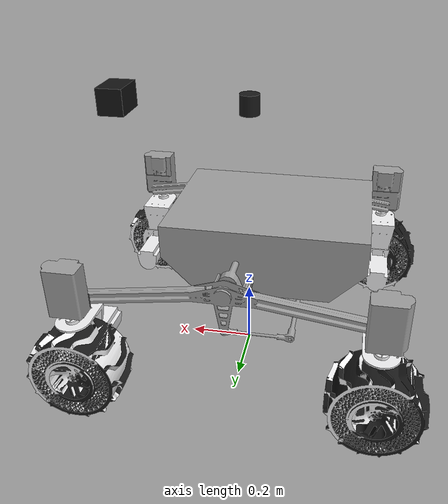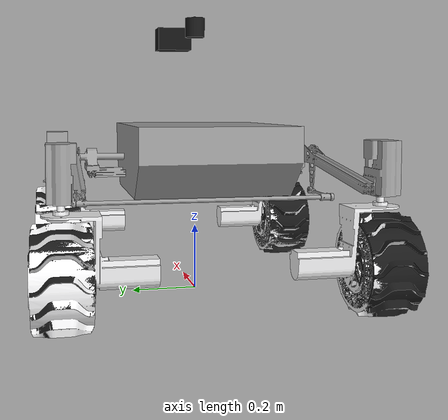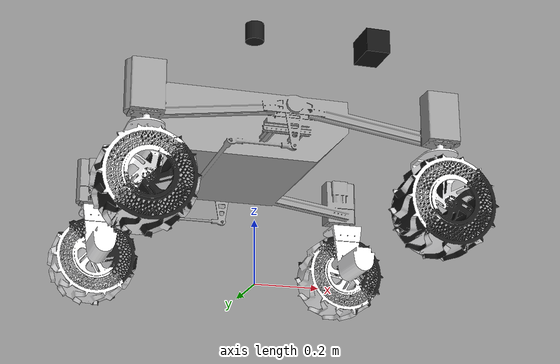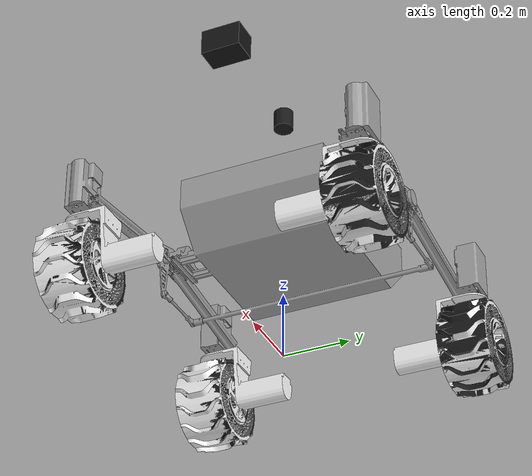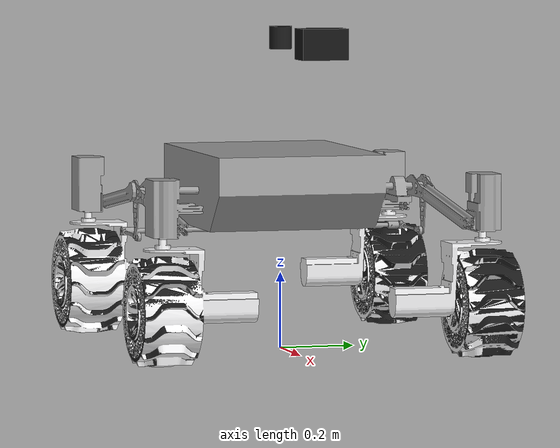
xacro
<?xml version="1.0"?>
<robot name="rover_steering_v1">
  <link name="base_footprint">
    </link>
  <joint name="base_footprint_joint" type="fixed">
    <parent link="base_footprint" />
    <child link="base_link" />
    <origin xyz="0 0 0.5235" rpy="0 0 0" />
  </joint>
  <link name="base_link">
    <inertial>
      <origin xyz="-0.038189 1.4028E-08 -0.4" rpy="0 0 0" />
      <mass value="5.3544" />
      <inertia ixx="0.08924" ixy="0.0" ixz="0.0" iyy="0.17848" iyz="0.0" izz="0.232024" />
    </inertial>
    <visual>
      <origin xyz="0 0 0" rpy="0 0 0" />
      <geometry>
        <mesh filename="package://rover_steering_v1/meshes/base_link.STL" />
      </geometry>
      <material name="base_link_material">
        <color rgba="0.62745 0.62745 0.62745 1" />
      </material>
    </visual>
    <collision>
      <origin xyz="0 0 0.1" rpy="0 0 0" />
      <geometry>
        <box size="0.6 0.4 0.2" />
      </geometry>
    </collision>
  </link>
  <link name="steer1_link">
    <inertial>
      <origin xyz="-0.00087464 -1.9867E-08 -0.185" rpy="0 0 0" />
      <mass value="4.662" />
      <inertia ixx="0.039839" ixy="5.1891E-09" ixz="-5.3223E-09" iyy="0.02869" iyz="1.7198E-10" izz="0.02869" />
    </inertial>
    <visual>
      <origin xyz="0 0 0" rpy="0 0 0" />
      <geometry>
        <mesh filename="package://rover_steering_v1/meshes/steer1_link.STL" />
      </geometry>
      <material name="steer1_link_material">
        <color rgba="0.96078 0.96078 0.96471 1" />
      </material>
    </visual>
  </link>
  <joint name="steer1_joint" type="fixed">
    <origin xyz="0.425 0.425 -0.1885" rpy="0 0 1.5708" />
    <parent link="base_link" />
    <child link="steer1_link" />
  </joint>
  <link name="wheel1_link">
    <inertial>
      <origin xyz="1.9869E-08 1.9968E-08 -0.079149" rpy="0 0 0" />
      <mass value="4.6609" />
      <inertia ixx="0.02869" ixy="-1.7072E-10" ixz="5.1892E-09" iyy="0.02869" iyz="5.3209E-09" izz="0.039839" />
    </inertial>
    <visual>
      <origin xyz="0 0 0" rpy="0 0 0" />
      <geometry>
        <mesh filename="package://rover_steering_v1/meshes/wheel1_link.STL" />
      </geometry>
      <material name="wheel1_link_material">
        <color rgba="0.098039 0.098039 0.098039 1" />
      </material>
    </visual>
    <collision>
      <origin xyz="0 0 0" rpy="0 0 0" />
      <geometry>
        <cylinder radius="0.15" length="0.1" />
      </geometry>
    </collision>
  </link>
  <joint name="wheel1_joint" type="continuous">
    <origin xyz="-0.08 0 -0.185" rpy="1.5708 0 -1.5708" />
    <parent link="steer1_link" />
    <child link="wheel1_link" />
    <axis xyz="0 0 -1" />
    <limit effort="100" velocity="50" />
    <dynamics friction="0.2" />
  </joint>
  <link name="steer2_link">
    <inertial>
      <origin xyz="-0.00087463 1.9098E-08 -0.185" rpy="0 0 0" />
      <mass value="4.662" />
      <inertia ixx="0.039839" ixy="-5.0174E-09" ixz="-5.2922E-09" iyy="0.02869" iyz="-1.4328E-10" izz="0.02869" />
    </inertial>
    <visual>
      <origin xyz="0 0 0" rpy="0 0 0" />
      <geometry>
        <mesh filename="package://rover_steering_v1/meshes/steer2_link.STL" />
      </geometry>
      <material name="steer2_link_material">
        <color rgba="0.96078 0.96078 0.96471 1" />
      </material>
    </visual>
  </link>
  <joint name="steer2_joint" type="fixed">
    <origin xyz="-0.42458 0.425 -0.1885" rpy="0 0 1.5708" />
    <parent link="base_link" />
    <child link="steer2_link" />
  </joint>
  <link name="wheel2_link">
    <inertial>
      <origin xyz="-1.8996E-08 1.9916E-08 -0.079149" rpy="0 0 0" />
      <mass value="4.6608" />
      <inertia ixx="0.02869" ixy="1.4201E-10" ixz="-5.016E-09" iyy="0.02869" iyz="5.2923E-09" izz="0.039839" />
    </inertial>
    <visual>
      <origin xyz="0 0 0" rpy="0 0 0" />
      <geometry>
        <mesh filename="package://rover_steering_v1/meshes/wheel2_link.STL" />
      </geometry>
      <material name="wheel2_link_material">
        <color rgba="0.098039 0.098039 0.098039 1" />
      </material>
    </visual>
    <collision>
      <origin xyz="0 0 0" rpy="0 0 0" />
      <geometry>
        <cylinder radius="0.15" length="0.1" />
      </geometry>
    </collision>
  </link>
  <joint name="wheel2_joint" type="continuous">
    <origin xyz="-0.08 0 -0.185" rpy="1.5708 0 -1.5708" />
    <parent link="steer2_link" />
    <child link="wheel2_link" />
    <axis xyz="0 0 -1" />
    <limit effort="100" velocity="50" />
    <dynamics friction="0.2" />
  </joint>
  <link name="steer3_link">
    <inertial>
      <origin xyz="0.00087463 -1.9027E-08 -0.185" rpy="0 0 0" />
      <mass value="4.662" />
      <inertia ixx="0.039839" ixy="-5.0099E-09" ixz="5.303E-09" iyy="0.02869" iyz="1.5972E-10" izz="0.02869" />
    </inertial>
    <visual>
      <origin xyz="0 0 0" rpy="0 0 0" />
      <geometry>
        <mesh filename="package://rover_steering_v1/meshes/steer3_link.STL" />
      </geometry>
      <material name="steer3_link_material">
        <color rgba="0.96078 0.96078 0.96471 1" />
      </material>
    </visual>
  </link>
  <joint name="steer3_joint" type="fixed">
    <origin xyz="0.425 -0.425 -0.1885" rpy="0 0 1.5708" />
    <parent link="base_link" />
    <child link="steer3_link" />
  </joint>
  <link name="wheel3_link">
    <inertial>
      <origin xyz="1.9002E-08 -1.9979E-08 -0.079149" rpy="0 0 0" />
      <mass value="4.6608" />
      <inertia ixx="0.02869" ixy="1.5896E-10" ixz="5.0096E-09" iyy="0.02869" iyz="-5.3024E-09" izz="0.039839" />
    </inertial>
    <visual>
      <origin xyz="0 0 0" rpy="0 0 0" />
      <geometry>
        <mesh filename="package://rover_steering_v1/meshes/wheel3_link.STL" />
      </geometry>
      <material name="wheel3_link_material">
        <color rgba="0.098039 0.098039 0.098039 1" />
      </material>
    </visual>
    <collision>
      <origin xyz="0 0 0" rpy="0 0 0" />
      <geometry>
        <cylinder radius="0.15" length="0.1" />
      </geometry>
    </collision>
  </link>
  <joint name="wheel3_joint" type="continuous">
    <origin xyz="0.08 0 -0.185" rpy="-1.5708 0 -1.5708" />
    <parent link="steer3_link" />
    <child link="wheel3_link" />
    <axis xyz="0 0 1" />
    <limit effort="100" velocity="50" />
    <dynamics friction="0.2" />
  </joint>
  <link name="steer4_link">
    <inertial>
      <origin xyz="0.00087464 1.9832E-08 -0.185" rpy="0 0 0" />
      <mass value="4.662" />
      <inertia ixx="0.039839" ixy="5.178E-09" ixz="5.3424E-09" iyy="0.02869" iyz="-1.6409E-10" izz="0.02869" />
    </inertial>
    <visual>
      <origin xyz="0 0 0" rpy="0 0 0" />
      <geometry>
        <mesh filename="package://rover_steering_v1/meshes/steer4_link.STL" />
      </geometry>
      <material name="steer4_link_material">
        <color rgba="0.96078 0.96078 0.96471 1" />
      </material>
    </visual>
  </link>
  <joint name="steer4_joint" type="fixed">
    <origin xyz="-0.42458 -0.425 -0.1885" rpy="0 0 1.5708" />
    <parent link="base_link" />
    <child link="steer4_link" />
  </joint>
  <link name="wheel4_link">
    <inertial>
      <origin xyz="-1.9834E-08 -2.009E-08 -0.079149" rpy="0 0 0" />
      <mass value="4.6609" />
      <inertia ixx="0.02869" ixy="-1.6283E-10" ixz="-5.178E-09" iyy="0.02869" iyz="-5.3409E-09" izz="0.039839" />
    </inertial>
    <visual>
      <origin xyz="0 0 0" rpy="0 0 0" />
      <geometry>
        <mesh filename="package://rover_steering_v1/meshes/wheel4_link.STL" />
      </geometry>
      <material name="wheel4_link_material">
        <color rgba="0.098039 0.098039 0.098039 1" />
      </material>
    </visual>
    <collision>
      <origin xyz="0 0 0" rpy="0 0 0" />
      <geometry>
        <cylinder radius="0.15" length="0.1" />
      </geometry>
    </collision>
  </link>
  <joint name="wheel4_joint" type="continuous">
    <origin xyz="0.08 0 -0.185" rpy="-1.5708 0 -1.5708" />
    <parent link="steer4_link" />
    <child link="wheel4_link" />
    <axis xyz="0 0 1" />
    <limit effort="100" velocity="50" />
    <dynamics friction="0.2" />
  </joint>
  <gazebo reference="wheel1_link">
    <mu1>1.0</mu1>
    <mu2>0.1</mu2>
    <fdir1>1 0 0</fdir1>
    <kp>1000000.0</kp>
    <kd>100.0</kd>
    <minDepth>0.001</minDepth>
  </gazebo>
  <gazebo reference="wheel2_link">
    <mu1>1.0</mu1>
    <mu2>0.1</mu2>
    <fdir1>1 0 0</fdir1>
    <kp>1000000.0</kp>
    <kd>100.0</kd>
    <minDepth>0.001</minDepth>
  </gazebo>
  <gazebo reference="wheel3_link">
    <mu1>1.0</mu1>
    <mu2>0.1</mu2>
    <fdir1>1 0 0</fdir1>
    <kp>1000000.0</kp>
    <kd>100.0</kd>
    <minDepth>0.001</minDepth>
  </gazebo>
  <gazebo reference="wheel4_link">
    <mu1>1.0</mu1>
    <mu2>0.1</mu2>
    <fdir1>1 0 0</fdir1>
    <kp>1000000.0</kp>
    <kd>100.0</kd>
    <minDepth>0.001</minDepth>
  </gazebo>
  <gazebo>
    <plugin filename="gz-sim-diff-drive-system" name="gz::sim::systems::DiffDrive">
      <left_joint>wheel1_joint</left_joint>
      <left_joint>wheel2_joint</left_joint>
      <right_joint>wheel3_joint</right_joint>
      <right_joint>wheel4_joint</right_joint>
      <wheel_separation>0.69</wheel_separation>
      <wheel_radius>0.15</wheel_radius>
      <topic>/cmd_vel</topic>
      <odom_topic>/odom</odom_topic>
      <tf_topic>/tf</tf_topic>
      <frame_id>odom</frame_id>
      <child_frame_id>base_footprint</child_frame_id>
      <odom_publish_frequency>50</odom_publish_frequency>
      <min_linear_velocity>-1.0</min_linear_velocity>
      <max_linear_velocity>1.0</max_linear_velocity>
      <min_angular_velocity>-1.0</min_angular_velocity>
      <max_angular_velocity>1.0</max_angular_velocity>
      <min_linear_acceleration>-0.8</min_linear_acceleration>
      <max_linear_acceleration>0.8</max_linear_acceleration>
      <min_angular_acceleration>-1.0</min_angular_acceleration>
      <max_angular_acceleration>1.0</max_angular_acceleration>
    </plugin>
    <plugin filename="gz-sim-joint-state-publisher-system" name="gz::sim::systems::JointStatePublisher">
      <topic>/joint_states</topic>
      <joint_name>wheel1_joint</joint_name>
      <joint_name>wheel2_joint</joint_name>
      <joint_name>wheel3_joint</joint_name>
      <joint_name>wheel4_joint</joint_name>
    </plugin>
  </gazebo>
  <link name="lidar_link">
    <inertial>
      <mass value="0.1" />
      <inertia ixx="0.001" ixy="0" ixz="0" iyy="0.001" iyz="0" izz="0.001" />
    </inertial>
    <visual>
      <geometry>
        <cylinder radius="0.03" length="0.06" />
      </geometry>
      <material name="lidar_black">
        <color rgba="0.1 0.1 0.1 1" />
      </material>
    </visual>
  </link>
  <joint name="lidar_joint" type="fixed">
    <parent link="base_link" />
    <child link="lidar_link" />
    <origin xyz="0 0 0.3" />
  </joint>
  <gazebo reference="lidar_link">
    <sensor name="lidar" type="gpu_lidar">
      <always_on>true</always_on>
      <visualize>false</visualize>
      <update_rate>10</update_rate>
      <topic>/scan</topic>
      <gz_frame_id>lidar_link</gz_frame_id>
      <lidar>
        <scan>
          <horizontal>
            <samples>360</samples>
            <resolution>1</resolution>
            <min_angle>-3.141592653589793</min_angle>
            <max_angle>3.141592653589793</max_angle>
          </horizontal>
          <vertical>
            <samples>1</samples>
            <resolution>1</resolution>
            <min_angle>0</min_angle>
            <max_angle>0</max_angle>
          </vertical>
        </scan>
        <range>
          <min>0.1</min>
          <max>30.0</max>
          <resolution>0.01</resolution>
        </range>
        <noise>
          <type>gaussian</type>
          <mean>0</mean>
          <stddev>0.005</stddev>
        </noise>
      </lidar>
    </sensor>
  </gazebo>
  <link name="camera_link">
    <inertial>
      <mass value="0.1" />
      <inertia ixx="0.0001" ixy="0" ixz="0" iyy="0.0001" iyz="0" izz="0.0001" />
    </inertial>
    <visual>
      <geometry><box size="0.08 0.12 0.08" /></geometry>
      <material name="camera_black"><color rgba="0.08 0.08 0.08 1" /></material>
    </visual>
  </link>
  <joint name="camera_joint" type="fixed">
    <parent link="base_link" />
    <child link="camera_link" />
    <origin xyz="0.40 0 0.30" />
  </joint>
  <!-- ROS optical convention: +Z forward, +X right, +Y down. -->
  <link name="camera_optical_frame" />
  <joint name="camera_optical_joint" type="fixed">
    <parent link="camera_link" />
    <child link="camera_optical_frame" />
    <origin xyz="0 0 0" rpy="-1.570796326794897 0 -1.570796326794897" />
  </joint>
  <gazebo reference="camera_link">
    <sensor name="front_camera" type="camera">
      <always_on>true</always_on>
      <update_rate>15</update_rate>
      <visualize>false</visualize>
      <topic>/camera/image_raw</topic>
      <gz_frame_id>camera_optical_frame</gz_frame_id>
      <camera>
        <optical_frame_id>camera_optical_frame</optical_frame_id>
        <camera_info_topic>/camera/camera_info</camera_info_topic>
        <horizontal_fov>1.396263401595464</horizontal_fov>
        <image>
          <width>1280</width>
          <height>720</height>
          <format>R8G8B8</format>
        </image>
        <clip><near>0.05</near><far>50</far></clip>
      </camera>
    </sensor>
  </gazebo>
  <link name="imu_link">
    <inertial>
      <mass value="0.01" />
      <inertia ixx="0.00001" ixy="0" ixz="0" iyy="0.00001" iyz="0" izz="0.00001" />
    </inertial>
  </link>
  <joint name="imu_joint" type="fixed">
    <parent link="base_link" />
    <child link="imu_link" />
    <origin xyz="0 0 0.1" />
  </joint>
  <gazebo reference="imu_link">
    <sensor name="imu" type="imu">
      <always_on>true</always_on>
      <update_rate>100</update_rate>
      <topic>/imu</topic>
      <gz_frame_id>imu_link</gz_frame_id>
      <imu />
    </sensor>
  </gazebo>
</robot>
